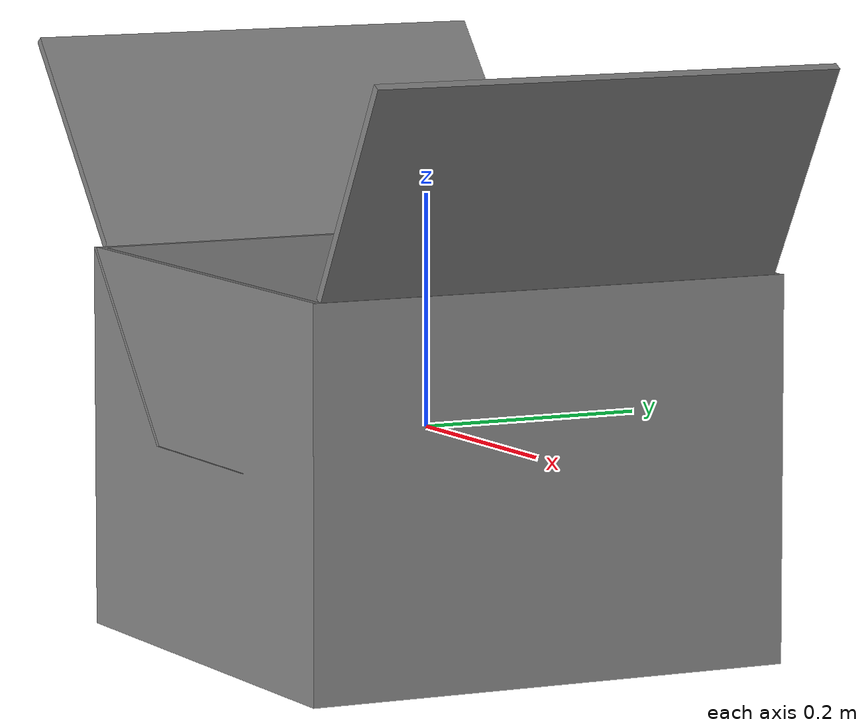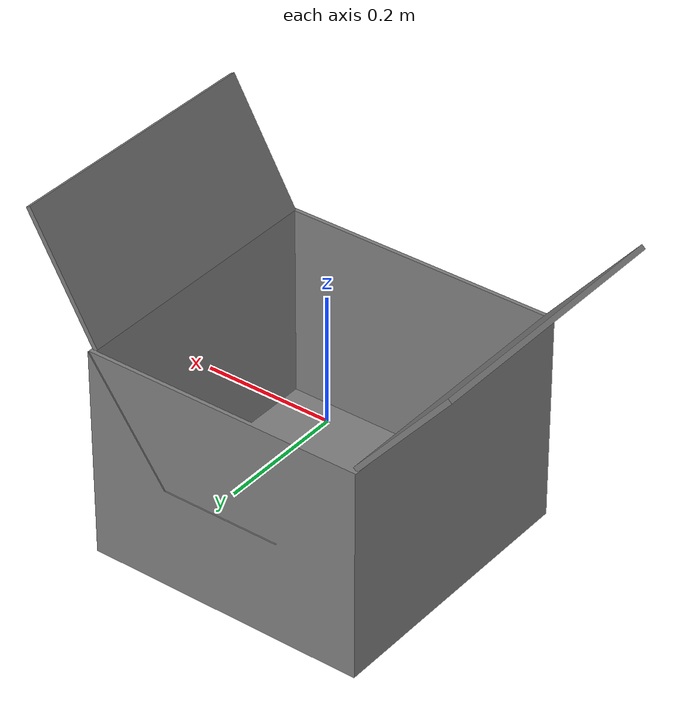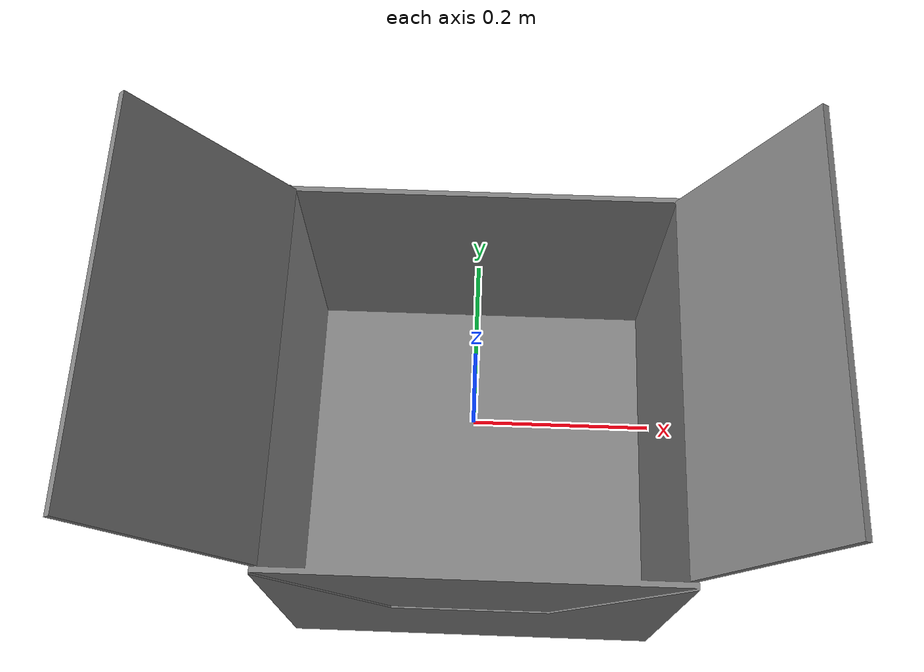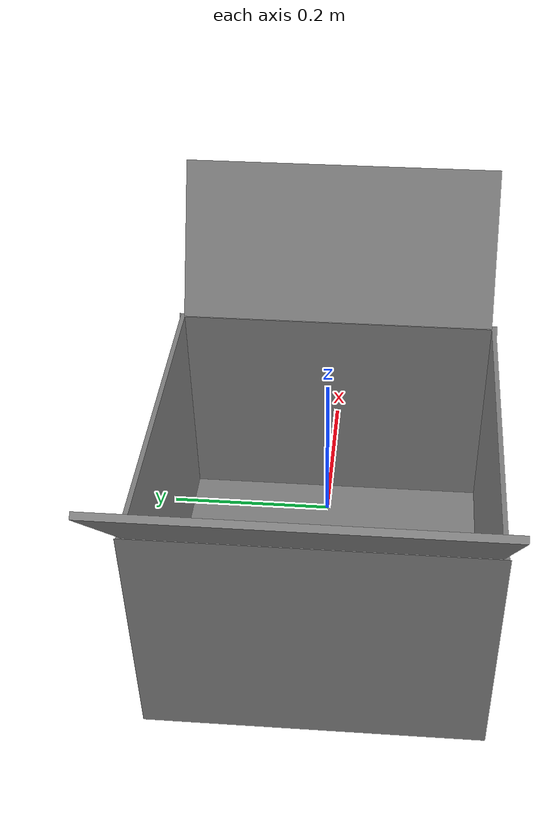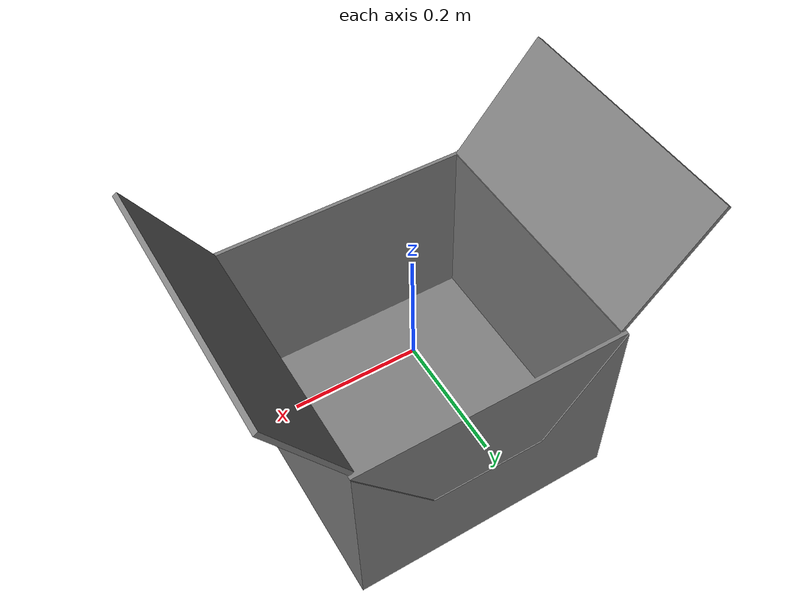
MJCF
<?xml version='1.0' encoding='utf-8'?>
<mujoco model="packaging_box">
  <compiler angle="radian" meshdir="assets" texturedir="assets" autolimits="true" /><asset>
    <mesh name="link_0_combined_mesh" file="link_0_combined_mesh.obj" scale="0.5 0.5 0.5" />
    <mesh name="link_1_combined_mesh" file="link_1_combined_mesh.obj" scale="0.5 0.5 0.5" />
    <mesh name="link_2_combined_mesh" file="link_2_combined_mesh.obj" scale="0.5 0.5 0.5" />
    <mesh name="base_mesh" file="original-26.obj" scale="0.5 0.5 0.5"/>
  </asset>
  <worldbody>
    <body name="base" pos="0 0 0">
        <geom
    name="base_visual"
    quat="0.5 0.5 0.5 0.5"
    type="mesh"
    mesh="link_2_combined_mesh"
    contype="0"
    conaffinity="0"
    condim="3"
    solimp="0.95 0.98 0.001"
    solref="0.004 1"
  />

  <!-- 2) Invisible floor geom (colliding) -->
  <geom
    name="base_floor"
    type="box"
    pos="0 0 -0.2"
    size="0.22 0.22 0.04"
    rgba="1 1 1 0"
    contype="1"
    conaffinity="1"
    solimp="0.95 0.98 0.001"
    solref="0.004 1"
  />

  <!-- 3) Invisible wall geoms (colliding) -->
  <geom
    name="wall_1"
    type="box"
    pos="0.21 0 -0.1"
    size="0.01 0.25 0.2"
    rgba="1 1 1 0"
    contype="1"
    conaffinity="1"
    solimp="0.95 0.98 0.001"
    solref="0.004 1"
  />
  <geom
    name="wall_2"
    type="box"
    pos="-0.21 0 -0.1"
    size="0.01 0.25 0.2"
    rgba="1 1 1 0"
    contype="1"
    conaffinity="1"
    solimp="0.95 0.98 0.001"
    solref="0.004 1"
  />
  <geom
    name="wall_3"
    type="box"
    pos="0 0.21 -0.1"
    size="0.25 0.01 0.2"
    rgba="1 1 1 0"
    contype="1"
    conaffinity="1"
    solimp="0.95 0.98 0.001"
    solref="0.004 1"
  />
  <geom
    name="wall_4"
    type="box"
    pos="0 -0.21 -0.1"
    size="0.25 0.01 0.2"
    rgba="1 1 1 0"
    contype="1"
    conaffinity="1"
    solimp="0.95 0.98 0.001"
    solref="0.004 1"
  />
    </body>
    <body name="link_0" pos="-0.21 0.057203 0.144343" quat="0.5 0.5 0.5 0.5">
      <joint name="joint_0" pos="0 0 0" axis="-1 0 0" range="-2.26893 0.523599" damping="10" armature="0.1" />
      <geom pos="-0.057203 -0.144343 0.21" type="mesh" mesh="link_0_combined_mesh" solimp="0.95 0.98 0.001" solref="0.004 1" />
    </body>
    <body name="link_1" pos="0.217829 0.213904 0.144" quat="0.5 0.5 0.5 0.5">
      <joint name="joint_1" pos="0 0 0" axis="1 0 0" range="-2.0944 0.698132" damping="10" armature="0.1"/>
      <geom pos="-0.213904 -0.144 -0.217829" type="mesh" mesh="link_1_combined_mesh" solimp="0.95 0.98 0.001" solref="0.004 1" />
    </body>
  </worldbody>
</mujoco>
